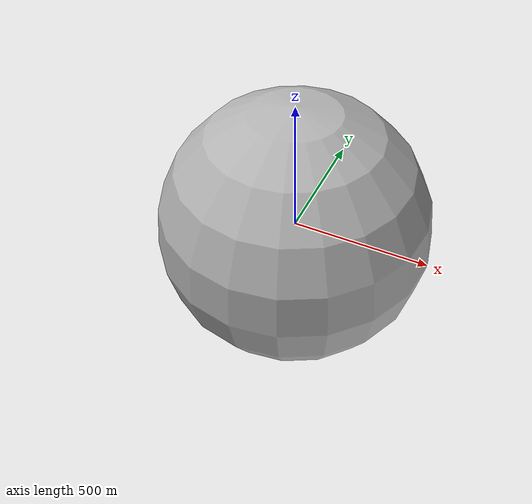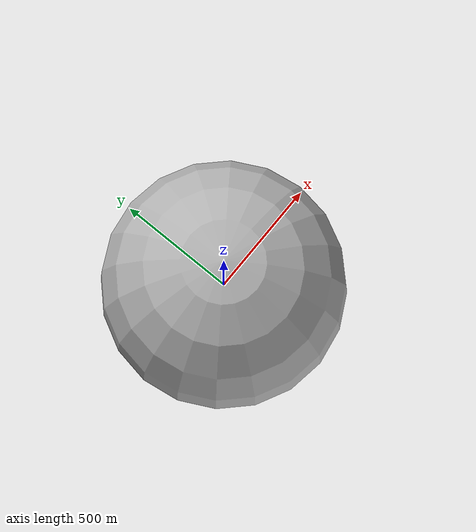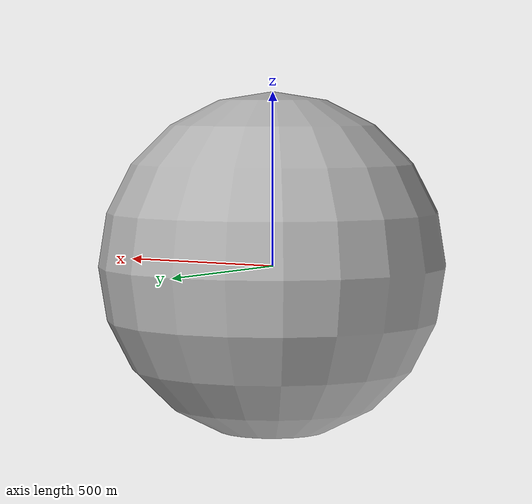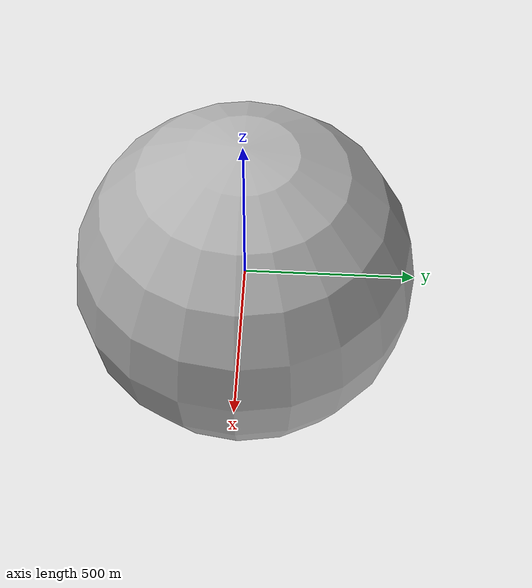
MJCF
<mujoco>
  <option gravity="0 0 -9.81" />
  <worldbody>

    <body name="object_2" pos="0 0 0">
      <geom type="box" size="0.3 0.3 0.3" rgba="0.7 0.7 0.7 1" />
    </body>
  <body name="skater" pos="0.0 0.0 1.0"><geom type="sphere" size="500.0" rgba="0.7 0.7 0.7 1" /></body><body name="skater_body" pos="0.0 0.0 1.0"><geom type="sphere" size="500.0" rgba="0.7 0.7 0.7 1" /></body></worldbody>
</mujoco>
